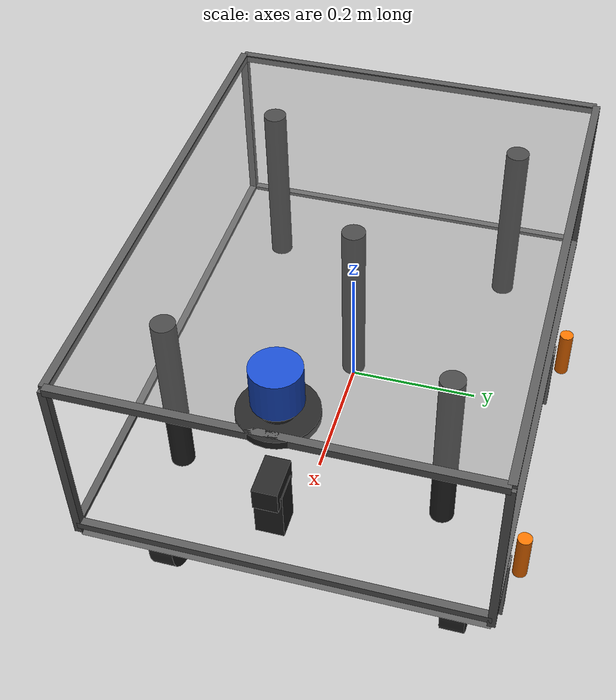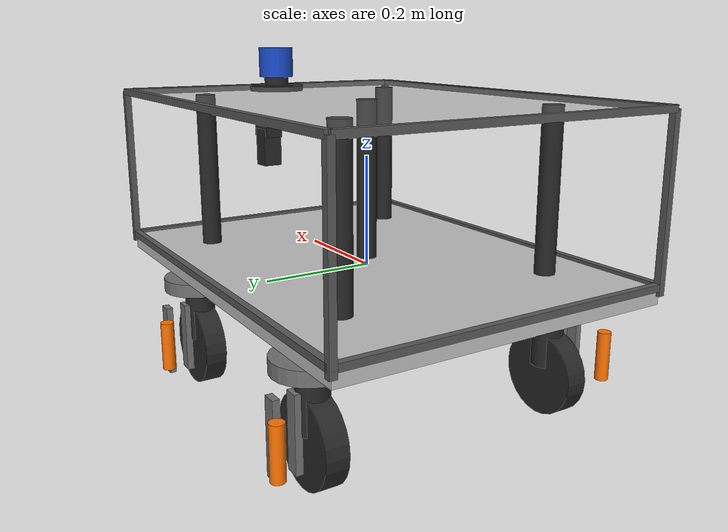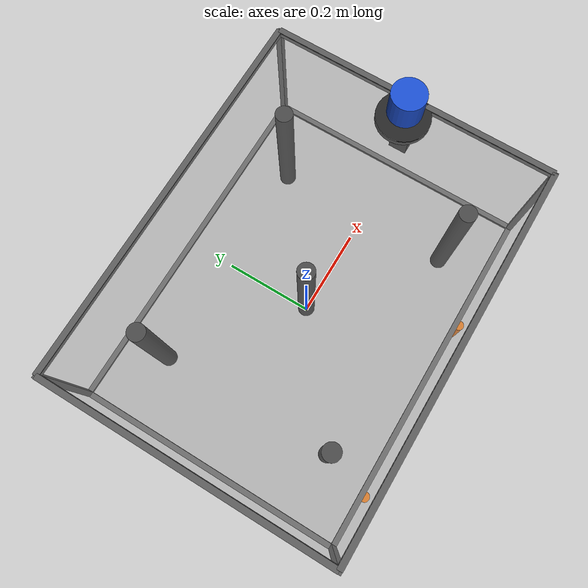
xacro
<?xml version="1.0"?>
<robot xmlns:xacro="http://www.ros.org/wiki/xacro" name="inspection_bot">

  <material name="white">  <color rgba="0.95 0.95 0.95 1.0"/></material>
  <material name="dark">   <color rgba="0.15 0.15 0.15 1.0"/></material>
  <material name="grey">   <color rgba="0.45 0.45 0.45 1.0"/></material>
  <material name="blue">   <color rgba="0.10 0.30 0.80 1.0"/></material>
  <material name="red">    <color rgba="0.90 0.15 0.10 1.0"/></material>
  <material name="orange">      <color rgba="1.00 0.45 0.00 1.0"/></material>
  <material name="light_grey">  <color rgba="0.75 0.75 0.75 1.0"/></material>
  <material name="grey_acrylic"><color rgba="0.55 0.55 0.55 0.35"/></material>
  <material name="grey_frame">  <color rgba="0.35 0.35 0.35 1.0"/></material>

  <xacro:macro name="corner" params="prefix x y steering_z wheel_drop side steering_type:=continuous">

    <!-- Steering link: servo turntable + column + fork arms + shock -->
    <link name="${prefix}_steering_link">
      <inertial>
        <origin xyz="0 0 -0.06"/>
        <mass value="1.0"/>
        <inertia ixx="0.002" ixy="0.0" ixz="0.0" iyy="0.002" iyz="0.0" izz="0.002"/>
      </inertial>

      <!-- upper steering disk / servo turntable -->
      <visual>
        <origin xyz="0 0 0" rpy="0 0 0"/>
        <geometry>
          <cylinder radius="0.065" length="0.025"/>
        </geometry>
        <material name="grey"/>
      </visual>

      <!-- vertical steering column -->
      <visual>
        <origin xyz="0 0 -0.055" rpy="0 0 0"/>
        <geometry>
          <cylinder radius="0.028" length="0.11"/>
        </geometry>
        <material name="dark"/>
      </visual>

      <!-- outer fork arm (farther from wheel) -->
      <visual>
        <origin xyz="0 ${side * 0.065} -0.105" rpy="0 0 0"/>
        <geometry>
          <box size="0.025 0.012 0.13"/>
        </geometry>
        <material name="grey"/>
      </visual>

      <!-- inner fork arm (closer to wheel, but not touching) -->
      <visual>
        <origin xyz="0 ${side * 0.03} -0.105" rpy="0 0 0"/>
        <geometry>
          <box size="0.025 0.012 0.13"/>
        </geometry>
        <material name="grey"/>
      </visual>

      <!-- simplified shock absorber (offset to side, visual only) -->
      <visual>
        <origin xyz="-0.055 ${side * 0.085} -0.095" rpy="0 0 0"/>
        <geometry>
          <cylinder radius="0.012" length="0.09"/>
        </geometry>
        <material name="orange"/>
      </visual>

      <!-- tight collision around steering column only, avoid wheel overlap -->
      <collision>
        <origin xyz="0 0 -0.055" rpy="0 0 0"/>
        <geometry>
          <cylinder radius="0.03" length="0.08"/>
        </geometry>
      </collision>
    </link>

    <!-- Steering joint: strong damping prevents self-steer on spawn -->
    <joint name="${prefix}_steering_joint" type="${steering_type}">
      <parent link="base_link"/>
      <child link="${prefix}_steering_link"/>
      <origin xyz="${x} ${y} ${steering_z}" rpy="0 0 0"/>
      <axis xyz="0 0 1"/>
      <dynamics damping="5.0" friction="1.0"/>
    </joint>

    <!-- Wheel link -->
    <link name="${prefix}_wheel_link">
      <inertial>
        <origin xyz="0 0 0"/>
        <mass value="0.8"/>
        <inertia ixx="0.002" ixy="0.0" ixz="0.0" iyy="0.002" iyz="0.0" izz="0.002"/>
      </inertial>

      <visual>
        <origin xyz="0 0 0" rpy="-1.5708 0 0"/>
        <geometry>
          <cylinder radius="0.076" length="0.04"/>
        </geometry>
        <material name="dark"/>
      </visual>

      <collision>
        <origin xyz="0 0 0" rpy="-1.5708 0 0"/>
        <geometry>
          <cylinder radius="0.076" length="0.04"/>
        </geometry>
      </collision>
    </link>

    <!-- Wheel joint: axis Y for forward/backward rolling. Offset downward from steering_link. -->
    <joint name="${prefix}_wheel_joint" type="continuous">
      <parent link="${prefix}_steering_link"/>
      <child link="${prefix}_wheel_link"/>
      <origin xyz="0 0 ${wheel_drop}" rpy="0 0 0"/>
      <axis xyz="0 1 0"/>
      <dynamics damping="0.1" friction="0.02"/>
    </joint>

  </xacro:macro>

  <!-- BASE LINK: chassis board + wireframe shell + support columns + sensor mounts -->
  <link name="base_link">

    <!-- bottom chassis board -->
    <visual>
      <origin xyz="0 0 0" rpy="0 0 0"/>
      <geometry>
        <box size="0.806 0.607 0.03"/>
      </geometry>
      <material name="light_grey"/>
    </visual>

    <!-- top panel: semi-transparent grey acrylic -->
    <visual>
      <origin xyz="0 0 0.30" rpy="0 0 0"/>
      <geometry>
        <box size="0.806 0.607 0.008"/>
      </geometry>
      <material name="grey_acrylic"/>
    </visual>

    <!-- bottom edge: left long -->
    <visual>
      <origin xyz="0 0.3035 0.015" rpy="0 0 0"/>
      <geometry><box size="0.806 0.012 0.012"/></geometry>
      <material name="grey_frame"/>
    </visual>
    <!-- bottom edge: right long -->
    <visual>
      <origin xyz="0 -0.3035 0.015" rpy="0 0 0"/>
      <geometry><box size="0.806 0.012 0.012"/></geometry>
      <material name="grey_frame"/>
    </visual>
    <!-- bottom edge: front short -->
    <visual>
      <origin xyz="0.403 0 0.015" rpy="0 0 0"/>
      <geometry><box size="0.012 0.607 0.012"/></geometry>
      <material name="grey_frame"/>
    </visual>
    <!-- bottom edge: rear short -->
    <visual>
      <origin xyz="-0.403 0 0.015" rpy="0 0 0"/>
      <geometry><box size="0.012 0.607 0.012"/></geometry>
      <material name="grey_frame"/>
    </visual>

    <!-- top edge: left long -->
    <visual>
      <origin xyz="0 0.3035 0.30" rpy="0 0 0"/>
      <geometry><box size="0.806 0.012 0.012"/></geometry>
      <material name="grey_frame"/>
    </visual>
    <!-- top edge: right long -->
    <visual>
      <origin xyz="0 -0.3035 0.30" rpy="0 0 0"/>
      <geometry><box size="0.806 0.012 0.012"/></geometry>
      <material name="grey_frame"/>
    </visual>
    <!-- top edge: front short -->
    <visual>
      <origin xyz="0.403 0 0.30" rpy="0 0 0"/>
      <geometry><box size="0.012 0.607 0.012"/></geometry>
      <material name="grey_frame"/>
    </visual>
    <!-- top edge: rear short -->
    <visual>
      <origin xyz="-0.403 0 0.30" rpy="0 0 0"/>
      <geometry><box size="0.012 0.607 0.012"/></geometry>
      <material name="grey_frame"/>
    </visual>

    <!-- vertical pillars: 4 corners -->
    <visual>
      <origin xyz="0.403 0.3035 0.15" rpy="0 0 0"/>
      <geometry><box size="0.012 0.012 0.30"/></geometry>
      <material name="grey_frame"/>
    </visual>
    <visual>
      <origin xyz="0.403 -0.3035 0.15" rpy="0 0 0"/>
      <geometry><box size="0.012 0.012 0.30"/></geometry>
      <material name="grey_frame"/>
    </visual>
    <visual>
      <origin xyz="-0.403 0.3035 0.15" rpy="0 0 0"/>
      <geometry><box size="0.012 0.012 0.30"/></geometry>
      <material name="grey_frame"/>
    </visual>
    <visual>
      <origin xyz="-0.403 -0.3035 0.15" rpy="0 0 0"/>
      <geometry><box size="0.012 0.012 0.30"/></geometry>
      <material name="grey_frame"/>
    </visual>

    <!-- black support columns (internal structure) -->
    <visual>
      <origin xyz="0.25 0.20 0.15" rpy="0 0 0"/>
      <geometry><cylinder radius="0.018" length="0.30"/></geometry>
      <material name="dark"/>
    </visual>
    <visual>
      <origin xyz="0.25 -0.20 0.15" rpy="0 0 0"/>
      <geometry><cylinder radius="0.018" length="0.30"/></geometry>
      <material name="dark"/>
    </visual>
    <visual>
      <origin xyz="-0.25 0.20 0.15" rpy="0 0 0"/>
      <geometry><cylinder radius="0.018" length="0.30"/></geometry>
      <material name="dark"/>
    </visual>
    <visual>
      <origin xyz="-0.25 -0.20 0.15" rpy="0 0 0"/>
      <geometry><cylinder radius="0.018" length="0.30"/></geometry>
      <material name="dark"/>
    </visual>
    <visual>
      <origin xyz="0.0 0.0 0.15" rpy="0 0 0"/>
      <geometry><cylinder radius="0.018" length="0.30"/></geometry>
      <material name="dark"/>
    </visual>

    <!-- Lidar mounting column -->
    <visual>
      <origin xyz="0.36101 -0.000993 0.325" rpy="0 0 0"/>
      <geometry><cylinder radius="0.025" length="0.05"/></geometry>
      <material name="dark"/>
    </visual>
    <!-- Lidar mounting base disk -->
    <visual>
      <origin xyz="0.36101 -0.000993 0.30" rpy="0 0 0"/>
      <geometry><cylinder radius="0.055" length="0.012"/></geometry>
      <material name="dark"/>
    </visual>

    <!-- Camera mounting bracket -->
    <visual>
      <origin xyz="0.4056 0 0.17" rpy="0 0 0"/>
      <geometry><box size="0.04 0.04 0.08"/></geometry>
      <material name="dark"/>
    </visual>

    <collision>
      <origin xyz="0 0 0" rpy="0 0 0"/>
      <geometry>
        <box size="0.806 0.607 0.03"/>
      </geometry>
    </collision>
    <inertial>
      <origin xyz="0 0 0"/>
      <mass value="5.0"/>
      <inertia
        ixx="${5.0/12.0 * (0.607*0.607 + 0.03*0.03)}"
        ixy="0.0" ixz="0.0"
        iyy="${5.0/12.0 * (0.806*0.806 + 0.03*0.03)}"
        iyz="0.0"
        izz="${5.0/12.0 * (0.806*0.806 + 0.607*0.607)}"/>
    </inertial>
  </link>

  <!-- FOUR CORNERS -->
  <xacro:corner prefix="fl" x="0.2316"  y="0.238"  steering_z="-0.055" wheel_drop="-0.124" side="1"/>
  <xacro:corner prefix="fr" x="0.2316"  y="-0.238" steering_z="-0.055" wheel_drop="-0.124" side="-1"/>
  <xacro:corner prefix="rl" x="-0.2284" y="0.238"  steering_z="-0.055" wheel_drop="-0.124" side="1"  steering_type="fixed"/>
  <xacro:corner prefix="rr" x="-0.2284" y="-0.238" steering_z="-0.055" wheel_drop="-0.124" side="-1" steering_type="fixed"/>

  <!-- LIDAR -->
  <link name="lidar_link">
    <inertial>
      <origin xyz="0 0 0"/>
      <mass value="0.12"/>
      <inertia ixx="0.00005" ixy="0.0" ixz="0.0" iyy="0.00004" iyz="0.0" izz="0.00007"/>
    </inertial>
    <visual>
      <origin xyz="0 0 0" rpy="0 0 0"/>
      <geometry>
        <cylinder radius="0.035" length="0.06"/>
      </geometry>
      <material name="blue"/>
    </visual>
    <collision>
      <origin xyz="0 0 0" rpy="0 0 0"/>
      <geometry>
        <cylinder radius="0.035" length="0.06"/>
      </geometry>
    </collision>
  </link>

  <joint name="lidar_joint" type="fixed">
    <parent link="base_link"/>
    <child link="lidar_link"/>
    <origin xyz="0.36101 -0.000993 0.35253" rpy="0 0 0"/>
  </joint>

  <!-- CAMERA -->
  <link name="camera_link">
    <inertial>
      <origin xyz="0 0 0"/>
      <mass value="0.1"/>
      <inertia ixx="0.00005" ixy="0.0" ixz="0.0" iyy="0.00005" iyz="0.0" izz="0.00005"/>
    </inertial>
    <visual>
      <origin xyz="0 0 0" rpy="0 0 0"/>
      <geometry>
        <box size="0.06 0.035 0.035"/>
      </geometry>
      <material name="dark"/>
    </visual>
    <collision>
      <origin xyz="0 0 0" rpy="0 0 0"/>
      <geometry>
        <box size="0.06 0.035 0.035"/>
      </geometry>
    </collision>
  </link>

  <joint name="camera_joint" type="fixed">
    <parent link="base_link"/>
    <child link="camera_link"/>
    <origin xyz="0.4056 0 0.21" rpy="0 0 0"/>
  </joint>

  <!-- ros2_control hardware interfaces -->
  <ros2_control name="GazeboSystem" type="system">
    <hardware>
      <plugin>ign_ros2_control/IgnitionSystem</plugin>
    </hardware>

    <joint name="fl_steering_joint">
      <command_interface name="position"/>
      <state_interface name="position"/>
      <state_interface name="velocity"/>
    </joint>
    <joint name="fr_steering_joint">
      <command_interface name="position"/>
      <state_interface name="position"/>
      <state_interface name="velocity"/>
    </joint>
    <!-- Phase 2A: rear steering joints are fixed (not in ros2_control) -->

    <joint name="fl_wheel_joint">
      <command_interface name="velocity"/>
      <state_interface name="position"/>
      <state_interface name="velocity"/>
    </joint>
    <joint name="fr_wheel_joint">
      <command_interface name="velocity"/>
      <state_interface name="position"/>
      <state_interface name="velocity"/>
    </joint>
    <joint name="rl_wheel_joint">
      <command_interface name="velocity"/>
      <state_interface name="position"/>
      <state_interface name="velocity"/>
    </joint>
    <joint name="rr_wheel_joint">
      <command_interface name="velocity"/>
      <state_interface name="position"/>
      <state_interface name="velocity"/>
    </joint>
  </ros2_control>

  <gazebo>
    <plugin
      filename="libgz_ros2_control-system.so"
      name="gz_ros2_control::GazeboSimROS2ControlPlugin">
      <robot_param>robot_description</robot_param>
      <robot_param_node>robot_state_publisher</robot_param_node>
      <parameters>$(find inspection_bot_description)/config/controllers.yaml</parameters>
    </plugin>
  </gazebo>

  <gazebo reference="base_link"><material>Gazebo/White</material></gazebo>
  <gazebo reference="fl_steering_link"><material>Gazebo/Grey</material></gazebo>
  <gazebo reference="fr_steering_link"><material>Gazebo/Grey</material></gazebo>
  <gazebo reference="rl_steering_link"><material>Gazebo/Grey</material></gazebo>
  <gazebo reference="rr_steering_link"><material>Gazebo/Grey</material></gazebo>
  <!-- High friction for proper Ackermann steering grip -->
  <gazebo reference="fl_wheel_link">
    <mu1>1.5</mu1><mu2>1.5</mu2>
    <material>Gazebo/FlatBlack</material>
  </gazebo>
  <gazebo reference="fr_wheel_link">
    <mu1>1.5</mu1><mu2>1.5</mu2>
    <material>Gazebo/FlatBlack</material>
  </gazebo>
  <gazebo reference="rl_wheel_link">
    <mu1>1.5</mu1><mu2>1.5</mu2>
    <material>Gazebo/FlatBlack</material>
  </gazebo>
  <gazebo reference="rr_wheel_link">
    <mu1>1.5</mu1><mu2>1.5</mu2>
    <material>Gazebo/FlatBlack</material>
  </gazebo>
  <!-- Phase 2B-1: 2D Lidar sensor on lidar_link -->
  <gazebo reference="lidar_link">
    <material>Gazebo/Blue</material>
    <sensor name="phase2b_lidar" type="gpu_lidar">
      <alwaysOn>1</alwaysOn>
      <visualize>true</visualize>
      <update_rate>10</update_rate>
      <topic>/scan</topic>
      <lidar>
        <scan>
          <horizontal>
            <samples>720</samples>
            <resolution>1</resolution>
            <min_angle>-3.14159</min_angle>
            <max_angle>3.14159</max_angle>
          </horizontal>
          <vertical>
            <samples>1</samples>
            <min_angle>0</min_angle>
            <max_angle>0</max_angle>
          </vertical>
        </scan>
        <range>
          <min>0.1</min>
          <max>15.0</max>
          <resolution>0.01</resolution>
        </range>
      </lidar>
    </sensor>
  </gazebo>
  <gazebo reference="camera_link"><material>Gazebo/Red</material></gazebo>

</robot>
